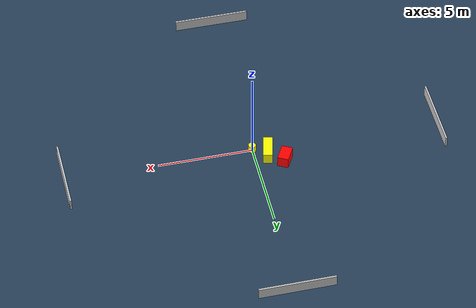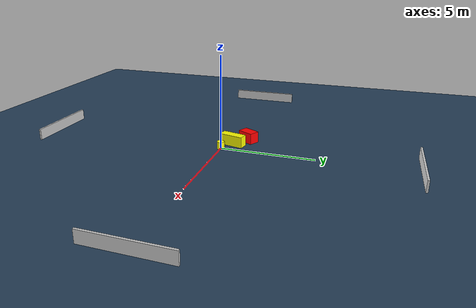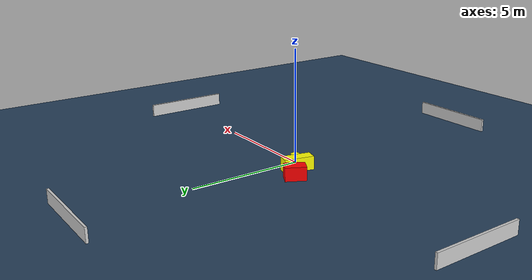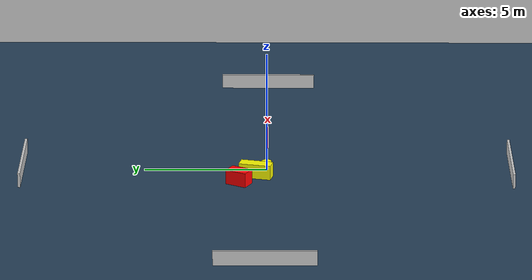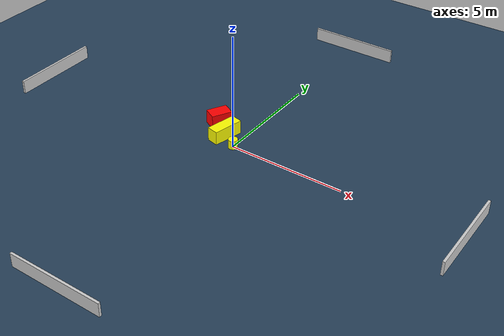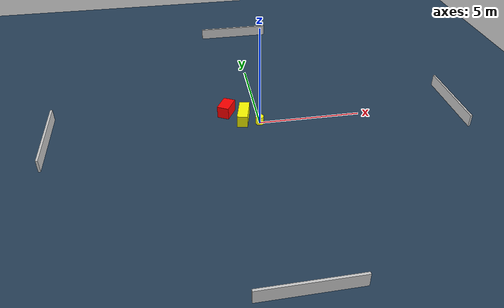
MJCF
<?xml version="1.0" ?>
<mujoco model="generated_environment">
  <option timestep="0.01" integrator="RK4" cone="elliptic"/>
  <default>
    <geom density="1"/>
  </default>
  <asset>
    <texture builtin="gradient" height="3072" name="skybox" rgb1="0.3 0.5 0.7" rgb2="0 0 0" type="skybox" width="512"/>
    <texture builtin="checker" height="300" name="groundplane" rgb1="0.2 0.3 0.4" rgb2="0.1 0.2 0.3" type="2d" width="300"/>
    <material name="groundplane" reflectance="0.2" texrepeat="5 5" texture="groundplane"/>
  </asset>
  <worldbody>
    <light dir="0 0 -1" directional="true" pos="0 0 1.5"/>
    <geom condim="3" friction="0.5 0.005 0.001" material="groundplane" name="floor" pos="0 0 0" size="0 0 0.05" type="plane"/>
    <body name="walls">
      <geom name="wall_1" condim="4" pos="-10.0 0.0 0.3" rgba="0.800000011920929 0.800000011920929 0.800000011920929 1.0" size="0.05 2.0 0.3" type="box"/>
      <geom name="wall_2" condim="4" pos="10.0 0.0 0.3" rgba="0.800000011920929 0.800000011920929 0.800000011920929 1.0" size="0.05 2.0 0.3" type="box"/>
      <geom name="wall_3" condim="4" pos="0.0 -10.0 0.3" rgba="0.800000011920929 0.800000011920929 0.800000011920929 1.0" size="2.0 0.05 0.3" type="box"/>
      <geom name="wall_4" condim="4" pos="0.0 10.0 0.3" rgba="0.800000011920929 0.800000011920929 0.800000011920929 1.0" size="2.0 0.05 0.3" type="box"/>
    </body>
    <body name="robot">
      <joint name="joint_x" type="slide" pos="0 0 0" axis="1 0 0"/>
      <joint name="joint_y" type="slide" pos="0 0 0" axis="0 1 0"/>
      <geom name="robot" type="cylinder" pos="0.0 0.0 0.2" size="0.2 0.2 0.0" mass="5.0" friction="1.0 0.005 0.0001" condim="4" rgba="1.0 1.0 0.0 1.0"/>
    </body>
    <body name="obstacle_1_movable">
      <geom name="obstacle_1_movable" condim="4" pos="-0.7368229460096908 0.4356785541290392 0.3" euler="0 0 166.73343070865207" friction="0.0 0.005 0.001" rgba="1.0 1.0 0.0 1.0" size="0.2522530407964897 0.6618875440102094 0.3" type="box" mass="0.1"/>
      <joint type="free"/>
    </body>
    <body name="obstacle_2_static">
      <geom name="obstacle_2_static" condim="4" pos="-1.506737989501138 1.1154455255509943 0.3" euler="0 0 151.31565156573566" friction="0.0 0.005 0.001" rgba="1.0 0.0 0.0 1.0" size="0.29431490636187846 0.4523369800151843 0.3" type="box"/>
    </body>
  </worldbody>
  <actuator>
    <motor name="actuator_x" joint="joint_x" gear="1" ctrlrange="-1 1"/>
    <motor name="actuator_y" joint="joint_y" gear="1" ctrlrange="-1 1"/>
  </actuator>
</mujoco>
